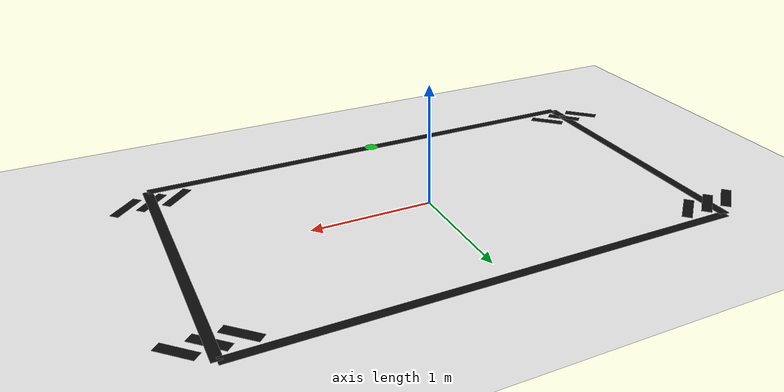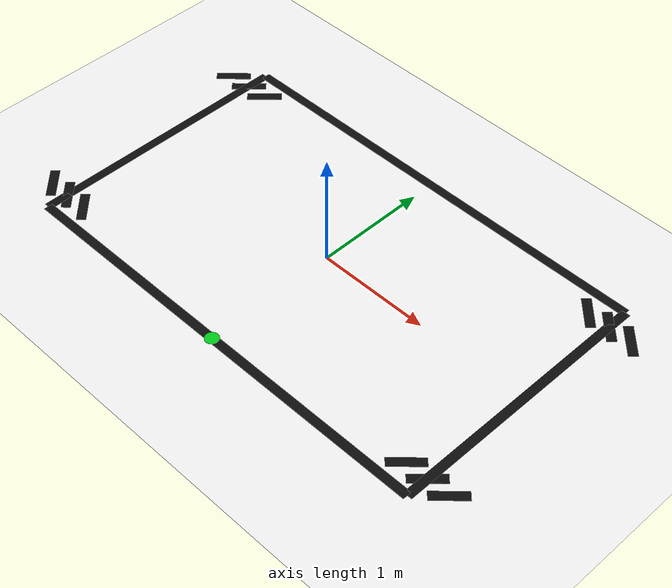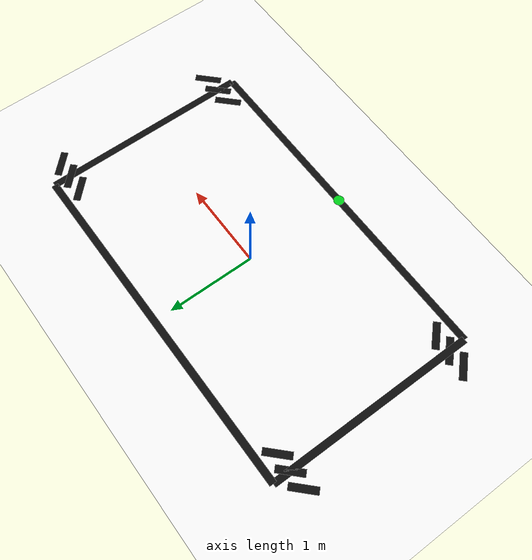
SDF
<?xml version="1.0" ?>
<sdf version="1.9">
  <world name="line_track">

    <plugin filename="gz-sim-physics-system"        name="gz::sim::systems::Physics"/>
    <plugin filename="gz-sim-user-commands-system"  name="gz::sim::systems::UserCommands"/>
    <plugin filename="gz-sim-scene-broadcaster-system" name="gz::sim::systems::SceneBroadcaster"/>
    <plugin filename="gz-sim-sensors-system"        name="gz::sim::systems::Sensors">
      <render_engine>ogre2</render_engine>
    </plugin>

    <physics name="1ms" type="ignored">
      <max_step_size>0.001</max_step_size>
      <real_time_factor>1.0</real_time_factor>
    </physics>

    <light type="directional" name="sun">
      <cast_shadows>true</cast_shadows>
      <pose>0 0 10 0 0 0</pose>
      <diffuse>0.9 0.9 0.9 1</diffuse>
      <specular>0.1 0.1 0.1 1</specular>
      <direction>-0.5 0.1 -0.9</direction>
    </light>

    <light type="directional" name="ambient_fill">
      <cast_shadows>false</cast_shadows>
      <pose>0 0 10 0 0 0</pose>
      <diffuse>0.4 0.4 0.4 1</diffuse>
      <specular>0 0 0 1</specular>
      <direction>0.5 -0.1 -0.9</direction>
    </light>

    <!-- WHITE GROUND PLANE — large enough robot never falls off -->
    <model name="ground_plane">
      <static>true</static>
      <link name="link">
        <collision name="collision">
          <geometry><plane><normal>0 0 1</normal><size>20 20</size></plane></geometry>
          <surface><friction><ode><mu>1.0</mu><mu2>1.0</mu2></ode></friction></surface>
        </collision>
        <visual name="visual">
          <geometry><plane><normal>0 0 1</normal><size>20 20</size></plane></geometry>
          <material>
            <ambient>0.95 0.95 0.95 1</ambient>
            <diffuse>0.95 0.95 0.95 1</diffuse>
            <specular>0.1 0.1 0.1 1</specular>
          </material>
        </visual>
      </link>
    </model>

    <!-- BOTTOM straight -->
    <model name="s_bottom">
      <static>true</static><pose>0 -1.2 0.001 0 0 0</pose>
      <link name="link">
        <visual name="v"><geometry><box><size>4.0 0.08 0.002</size></box></geometry>
          <material><ambient>0.05 0.05 0.05 1</ambient><diffuse>0.05 0.05 0.05 1</diffuse></material></visual>
        <collision name="c"><geometry><box><size>4.0 0.08 0.002</size></box></geometry></collision>
      </link>
    </model>

    <!-- TOP straight -->
    <model name="s_top">
      <static>true</static><pose>0 1.2 0.001 0 0 0</pose>
      <link name="link">
        <visual name="v"><geometry><box><size>4.0 0.08 0.002</size></box></geometry>
          <material><ambient>0.05 0.05 0.05 1</ambient><diffuse>0.05 0.05 0.05 1</diffuse></material></visual>
        <collision name="c"><geometry><box><size>4.0 0.08 0.002</size></box></geometry></collision>
      </link>
    </model>

    <!-- LEFT straight -->
    <model name="s_left">
      <static>true</static><pose>-2.0 0 0.001 0 0 0</pose>
      <link name="link">
        <visual name="v"><geometry><box><size>0.08 2.4 0.002</size></box></geometry>
          <material><ambient>0.05 0.05 0.05 1</ambient><diffuse>0.05 0.05 0.05 1</diffuse></material></visual>
        <collision name="c"><geometry><box><size>0.08 2.4 0.002</size></box></geometry></collision>
      </link>
    </model>

    <!-- RIGHT straight -->
    <model name="s_right">
      <static>true</static><pose>2.0 0 0.001 0 0 0</pose>
      <link name="link">
        <visual name="v"><geometry><box><size>0.08 2.4 0.002</size></box></geometry>
          <material><ambient>0.05 0.05 0.05 1</ambient><diffuse>0.05 0.05 0.05 1</diffuse></material></visual>
        <collision name="c"><geometry><box><size>0.08 2.4 0.002</size></box></geometry></collision>
      </link>
    </model>

    <!-- Bottom-Right corner -->
    <model name="c_br_1">
      <static>true</static><pose>1.80 -1.00 0.001 0 0 0.7854</pose>
      <link name="link">
        <visual name="v"><geometry><box><size>0.30 0.08 0.002</size></box></geometry>
          <material><ambient>0.05 0.05 0.05 1</ambient><diffuse>0.05 0.05 0.05 1</diffuse></material></visual>
        <collision name="c"><geometry><box><size>0.30 0.08 0.002</size></box></geometry></collision>
      </link>
    </model>
    <model name="c_br_2">
      <static>true</static><pose>2.00 -1.00 0.001 0 0 0.7854</pose>
      <link name="link">
        <visual name="v"><geometry><box><size>0.30 0.08 0.002</size></box></geometry>
          <material><ambient>0.05 0.05 0.05 1</ambient><diffuse>0.05 0.05 0.05 1</diffuse></material></visual>
        <collision name="c"><geometry><box><size>0.30 0.08 0.002</size></box></geometry></collision>
      </link>
    </model>
    <model name="c_br_3">
      <static>true</static><pose>2.20 -1.00 0.001 0 0 0.7854</pose>
      <link name="link">
        <visual name="v"><geometry><box><size>0.30 0.08 0.002</size></box></geometry>
          <material><ambient>0.05 0.05 0.05 1</ambient><diffuse>0.05 0.05 0.05 1</diffuse></material></visual>
        <collision name="c"><geometry><box><size>0.30 0.08 0.002</size></box></geometry></collision>
      </link>
    </model>

    <!-- Bottom-Left corner -->
    <model name="c_bl_1">
      <static>true</static><pose>-1.80 -1.00 0.001 0 0 -0.7854</pose>
      <link name="link">
        <visual name="v"><geometry><box><size>0.30 0.08 0.002</size></box></geometry>
          <material><ambient>0.05 0.05 0.05 1</ambient><diffuse>0.05 0.05 0.05 1</diffuse></material></visual>
        <collision name="c"><geometry><box><size>0.30 0.08 0.002</size></box></geometry></collision>
      </link>
    </model>
    <model name="c_bl_2">
      <static>true</static><pose>-2.00 -1.00 0.001 0 0 -0.7854</pose>
      <link name="link">
        <visual name="v"><geometry><box><size>0.30 0.08 0.002</size></box></geometry>
          <material><ambient>0.05 0.05 0.05 1</ambient><diffuse>0.05 0.05 0.05 1</diffuse></material></visual>
        <collision name="c"><geometry><box><size>0.30 0.08 0.002</size></box></geometry></collision>
      </link>
    </model>
    <model name="c_bl_3">
      <static>true</static><pose>-2.20 -1.00 0.001 0 0 -0.7854</pose>
      <link name="link">
        <visual name="v"><geometry><box><size>0.30 0.08 0.002</size></box></geometry>
          <material><ambient>0.05 0.05 0.05 1</ambient><diffuse>0.05 0.05 0.05 1</diffuse></material></visual>
        <collision name="c"><geometry><box><size>0.30 0.08 0.002</size></box></geometry></collision>
      </link>
    </model>

    <!-- Top-Right corner -->
    <model name="c_tr_1">
      <static>true</static><pose>1.80 1.00 0.001 0 0 -0.7854</pose>
      <link name="link">
        <visual name="v"><geometry><box><size>0.30 0.08 0.002</size></box></geometry>
          <material><ambient>0.05 0.05 0.05 1</ambient><diffuse>0.05 0.05 0.05 1</diffuse></material></visual>
        <collision name="c"><geometry><box><size>0.30 0.08 0.002</size></box></geometry></collision>
      </link>
    </model>
    <model name="c_tr_2">
      <static>true</static><pose>2.00 1.00 0.001 0 0 -0.7854</pose>
      <link name="link">
        <visual name="v"><geometry><box><size>0.30 0.08 0.002</size></box></geometry>
          <material><ambient>0.05 0.05 0.05 1</ambient><diffuse>0.05 0.05 0.05 1</diffuse></material></visual>
        <collision name="c"><geometry><box><size>0.30 0.08 0.002</size></box></geometry></collision>
      </link>
    </model>
    <model name="c_tr_3">
      <static>true</static><pose>2.20 1.00 0.001 0 0 -0.7854</pose>
      <link name="link">
        <visual name="v"><geometry><box><size>0.30 0.08 0.002</size></box></geometry>
          <material><ambient>0.05 0.05 0.05 1</ambient><diffuse>0.05 0.05 0.05 1</diffuse></material></visual>
        <collision name="c"><geometry><box><size>0.30 0.08 0.002</size></box></geometry></collision>
      </link>
    </model>

    <!-- Top-Left corner -->
    <model name="c_tl_1">
      <static>true</static><pose>-1.80 1.00 0.001 0 0 0.7854</pose>
      <link name="link">
        <visual name="v"><geometry><box><size>0.30 0.08 0.002</size></box></geometry>
          <material><ambient>0.05 0.05 0.05 1</ambient><diffuse>0.05 0.05 0.05 1</diffuse></material></visual>
        <collision name="c"><geometry><box><size>0.30 0.08 0.002</size></box></geometry></collision>
      </link>
    </model>
    <model name="c_tl_2">
      <static>true</static><pose>-2.00 1.00 0.001 0 0 0.7854</pose>
      <link name="link">
        <visual name="v"><geometry><box><size>0.30 0.08 0.002</size></box></geometry>
          <material><ambient>0.05 0.05 0.05 1</ambient><diffuse>0.05 0.05 0.05 1</diffuse></material></visual>
        <collision name="c"><geometry><box><size>0.30 0.08 0.002</size></box></geometry></collision>
      </link>
    </model>
    <model name="c_tl_3">
      <static>true</static><pose>-2.20 1.00 0.001 0 0 0.7854</pose>
      <link name="link">
        <visual name="v"><geometry><box><size>0.30 0.08 0.002</size></box></geometry>
          <material><ambient>0.05 0.05 0.05 1</ambient><diffuse>0.05 0.05 0.05 1</diffuse></material></visual>
        <collision name="c"><geometry><box><size>0.30 0.08 0.002</size></box></geometry></collision>
      </link>
    </model>

    <!-- START marker -->
    <model name="start_marker">
      <static>true</static><pose>0 -1.2 0.003 0 0 0</pose>
      <link name="link">
        <visual name="v">
          <geometry><cylinder><radius>0.06</radius><length>0.001</length></cylinder></geometry>
          <material><ambient>0.0 0.8 0.1 1</ambient><diffuse>0.0 0.8 0.1 1</diffuse></material>
        </visual>
      </link>
    </model>

  </world>
</sdf>
